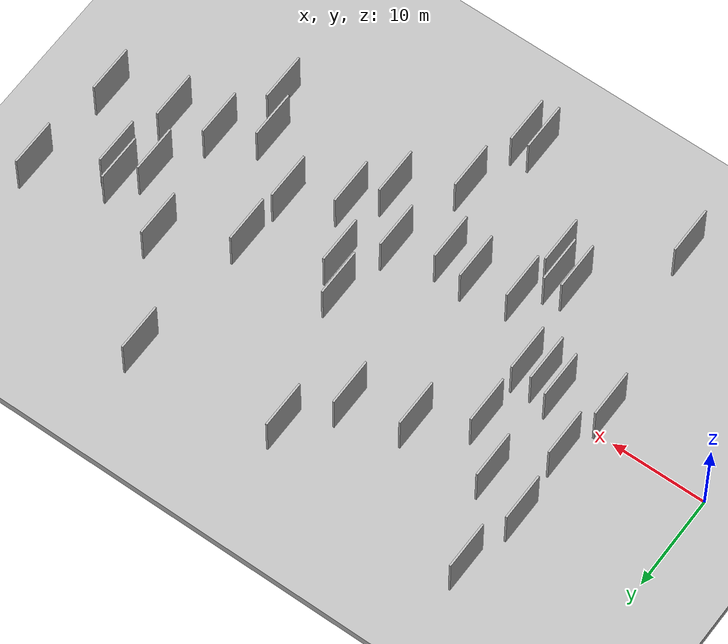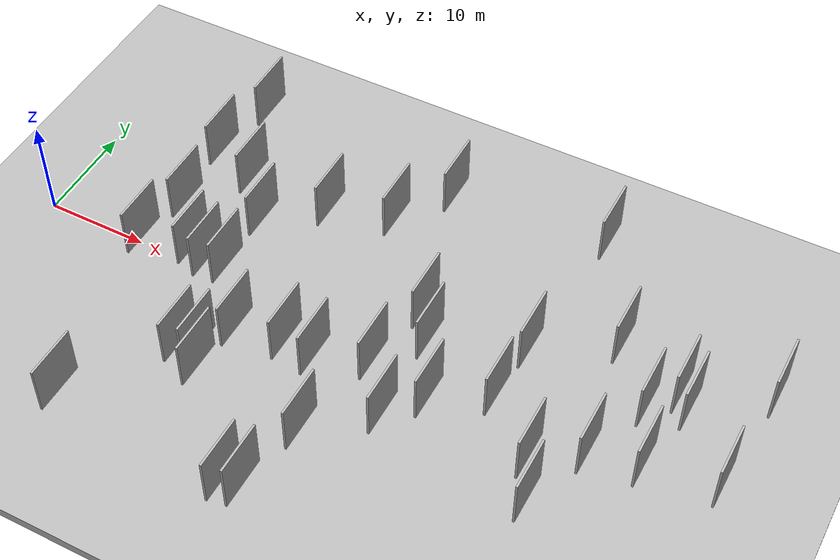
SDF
<?xml version="1.0" encoding="utf-8"?>

<sdf version="1.6">

   <world name="default">

      <gui fullscreen="0">

         <camera name="user_camera">

            <pose>-15 0 4.57585 0 0 0</pose>

            <view_controller>orbit</view_controller>

         </camera>

      </gui>

      <scene>

         <sky>

           <clouds>

             <speed>12</speed>

           </clouds>

         </sky>

         <ambient>0.4 0.4 0.4 1</ambient>

         <background>0.7 0.7 0.7 1</background>

         <shadows>1</shadows>

      </scene>

      <gravity>0 0 -9.8066</gravity>

      <magnetic_field>6e-06 2.3e-05 -4.2e-05</magnetic_field>

      <physics default="0" name="default_physics" type="ode">

         <ode>

            <solver>

               <type>quick</type>

               <iters>10</iters>

               <sor>1.0</sor>

               <use_dynamic_moi_rescaling>0</use_dynamic_moi_rescaling>

            </solver>

            <constraints>

               <cfm>0</cfm>

               <erp>0.2</erp>

               <contact_max_correcting_vel>100</contact_max_correcting_vel>

               <contact_surface_layer>0.001</contact_surface_layer>

            </constraints>

         </ode>

         <max_step_size>0.004</max_step_size>

         <real_time_factor>1</real_time_factor>

         <real_time_update_rate>250</real_time_update_rate>

      </physics>

      <light name="sun" type="directional">

         <cast_shadows>1</cast_shadows>

         <pose>0 0 10 0 0 0</pose>

         <diffuse>0.8 0.8 0.8 1</diffuse>

         <specular>0.2 0.2 0.2 1</specular>

         <attenuation>

            <range>1000</range>

            <constant>0.9</constant>

            <linear>0.01</linear>

            <quadratic>0.001</quadratic>

         </attenuation>

         <direction>-0.5 0.1 -0.9</direction>

      </light>

      <include>

         <name>ground_plane_1</name>

         <uri>model://HANNAS_ground_plane</uri>

         <pose>0 0 0  0 0 0</pose>

      </include>

      <include>

         <name>ground_plane_2</name>

         <uri>model://HANNAS_ground_plane</uri>

         <pose>100 0 0  0 0 0</pose>

      </include>

      <model name="HANNAS_wall_1">

         <static>1</static>

         <pose frame="">28.9679 -5.1095 2.5 0.000000 0.000000 1.570796</pose>

         <link name="link">

            <pose frame="">0 0 2.50 0 0 0</pose>

            <collision name="collision">

               <geometry>

                  <box>

                     <size>5.00 0.2 5.00</size>

                  </box>

               </geometry>

               <max_contacts>10</max_contacts>

               <surface>

                  <contact>

                     <ode/>

                  </contact>

                  <bounce/>

                  <friction>

                     <torsional>

                        <ode/>

                     </torsional>

                     <ode/>

                  </friction>

               </surface>

            </collision>

            <visual name="visual">

               <cast_shadows>0</cast_shadows>

               <geometry>

                  <box>

                     <size>5.00 0.2 5.00</size>

                  </box>

               </geometry>

               <material>

                  <script>

                     <uri>model://HANNAS_wall/materials/scripts</uri>

                     <uri>model://HANNAS_wall/materials/textures</uri>

                     <name>vrc/HANNAS_wall</name>

                  </script>

               </material>

            </visual>

            <self_collide>0</self_collide>

            <enable_wind>0</enable_wind>

            <kinematic>0</kinematic>

         </link>

      </model>

      <model name="HANNAS_wall_2">

         <static>1</static>

         <pose frame="">61.3008 5.7797 2.5 0.000000 0.000000 1.570796</pose>

         <link name="link">

            <pose frame="">0 0 2.50 0 0 0</pose>

            <collision name="collision">

               <geometry>

                  <box>

                     <size>5.00 0.2 5.00</size>

                  </box>

               </geometry>

               <max_contacts>10</max_contacts>

               <surface>

                  <contact>

                     <ode/>

                  </contact>

                  <bounce/>

                  <friction>

                     <torsional>

                        <ode/>

                     </torsional>

                     <ode/>

                  </friction>

               </surface>

            </collision>

            <visual name="visual">

               <cast_shadows>0</cast_shadows>

               <geometry>

                  <box>

                     <size>5.00 0.2 5.00</size>

                  </box>

               </geometry>

               <material>

                  <script>

                     <uri>model://HANNAS_wall/materials/scripts</uri>

                     <uri>model://HANNAS_wall/materials/textures</uri>

                     <name>vrc/HANNAS_wall</name>

                  </script>

               </material>

            </visual>

            <self_collide>0</self_collide>

            <enable_wind>0</enable_wind>

            <kinematic>0</kinematic>

         </link>

      </model>

      <model name="HANNAS_wall_3">

         <static>1</static>

         <pose frame="">33.4488 -19.4448 2.5 0.000000 0.000000 1.570796</pose>

         <link name="link">

            <pose frame="">0 0 2.50 0 0 0</pose>

            <collision name="collision">

               <geometry>

                  <box>

                     <size>5.00 0.2 5.00</size>

                  </box>

               </geometry>

               <max_contacts>10</max_contacts>

               <surface>

                  <contact>

                     <ode/>

                  </contact>

                  <bounce/>

                  <friction>

                     <torsional>

                        <ode/>

                     </torsional>

                     <ode/>

                  </friction>

               </surface>

            </collision>

            <visual name="visual">

               <cast_shadows>0</cast_shadows>

               <geometry>

                  <box>

                     <size>5.00 0.2 5.00</size>

                  </box>

               </geometry>

               <material>

                  <script>

                     <uri>model://HANNAS_wall/materials/scripts</uri>

                     <uri>model://HANNAS_wall/materials/textures</uri>

                     <name>vrc/HANNAS_wall</name>

                  </script>

               </material>

            </visual>

            <self_collide>0</self_collide>

            <enable_wind>0</enable_wind>

            <kinematic>0</kinematic>

         </link>

      </model>

      <model name="HANNAS_wall_4">

         <static>1</static>

         <pose frame="">19.7227 6.2007 2.5 0.000000 0.000000 1.570796</pose>

         <link name="link">

            <pose frame="">0 0 2.50 0 0 0</pose>

            <collision name="collision">

               <geometry>

                  <box>

                     <size>5.00 0.2 5.00</size>

                  </box>

               </geometry>

               <max_contacts>10</max_contacts>

               <surface>

                  <contact>

                     <ode/>

                  </contact>

                  <bounce/>

                  <friction>

                     <torsional>

                        <ode/>

                     </torsional>

                     <ode/>

                  </friction>

               </surface>

            </collision>

            <visual name="visual">

               <cast_shadows>0</cast_shadows>

               <geometry>

                  <box>

                     <size>5.00 0.2 5.00</size>

                  </box>

               </geometry>

               <material>

                  <script>

                     <uri>model://HANNAS_wall/materials/scripts</uri>

                     <uri>model://HANNAS_wall/materials/textures</uri>

                     <name>vrc/HANNAS_wall</name>

                  </script>

               </material>

            </visual>

            <self_collide>0</self_collide>

            <enable_wind>0</enable_wind>

            <kinematic>0</kinematic>

         </link>

      </model>

      <model name="HANNAS_wall_5">

         <static>1</static>

         <pose frame="">36.6707 -3.4539 2.5 0.000000 0.000000 1.570796</pose>

         <link name="link">

            <pose frame="">0 0 2.50 0 0 0</pose>

            <collision name="collision">

               <geometry>

                  <box>

                     <size>5.00 0.2 5.00</size>

                  </box>

               </geometry>

               <max_contacts>10</max_contacts>

               <surface>

                  <contact>

                     <ode/>

                  </contact>

                  <bounce/>

                  <friction>

                     <torsional>

                        <ode/>

                     </torsional>

                     <ode/>

                  </friction>

               </surface>

            </collision>

            <visual name="visual">

               <cast_shadows>0</cast_shadows>

               <geometry>

                  <box>

                     <size>5.00 0.2 5.00</size>

                  </box>

               </geometry>

               <material>

                  <script>

                     <uri>model://HANNAS_wall/materials/scripts</uri>

                     <uri>model://HANNAS_wall/materials/textures</uri>

                     <name>vrc/HANNAS_wall</name>

                  </script>

               </material>

            </visual>

            <self_collide>0</self_collide>

            <enable_wind>0</enable_wind>

            <kinematic>0</kinematic>

         </link>

      </model>

      <model name="HANNAS_wall_6">

         <static>1</static>

         <pose frame="">54.2506 -9.9566 2.5 0.000000 0.000000 1.570796</pose>

         <link name="link">

            <pose frame="">0 0 2.50 0 0 0</pose>

            <collision name="collision">

               <geometry>

                  <box>

                     <size>5.00 0.2 5.00</size>

                  </box>

               </geometry>

               <max_contacts>10</max_contacts>

               <surface>

                  <contact>

                     <ode/>

                  </contact>

                  <bounce/>

                  <friction>

                     <torsional>

                        <ode/>

                     </torsional>

                     <ode/>

                  </friction>

               </surface>

            </collision>

            <visual name="visual">

               <cast_shadows>0</cast_shadows>

               <geometry>

                  <box>

                     <size>5.00 0.2 5.00</size>

                  </box>

               </geometry>

               <material>

                  <script>

                     <uri>model://HANNAS_wall/materials/scripts</uri>

                     <uri>model://HANNAS_wall/materials/textures</uri>

                     <name>vrc/HANNAS_wall</name>

                  </script>

               </material>

            </visual>

            <self_collide>0</self_collide>

            <enable_wind>0</enable_wind>

            <kinematic>0</kinematic>

         </link>

      </model>

      <model name="HANNAS_wall_7">

         <static>1</static>

         <pose frame="">19.8229 -0.2111 2.5 0.000000 0.000000 1.570796</pose>

         <link name="link">

            <pose frame="">0 0 2.50 0 0 0</pose>

            <collision name="collision">

               <geometry>

                  <box>

                     <size>5.00 0.2 5.00</size>

                  </box>

               </geometry>

               <max_contacts>10</max_contacts>

               <surface>

                  <contact>

                     <ode/>

                  </contact>

                  <bounce/>

                  <friction>

                     <torsional>

                        <ode/>

                     </torsional>

                     <ode/>

                  </friction>

               </surface>

            </collision>

            <visual name="visual">

               <cast_shadows>0</cast_shadows>

               <geometry>

                  <box>

                     <size>5.00 0.2 5.00</size>

                  </box>

               </geometry>

               <material>

                  <script>

                     <uri>model://HANNAS_wall/materials/scripts</uri>

                     <uri>model://HANNAS_wall/materials/textures</uri>

                     <name>vrc/HANNAS_wall</name>

                  </script>

               </material>

            </visual>

            <self_collide>0</self_collide>

            <enable_wind>0</enable_wind>

            <kinematic>0</kinematic>

         </link>

      </model>

      <model name="HANNAS_wall_8">

         <static>1</static>

         <pose frame="">68.6237 9.1370 2.5 0.000000 0.000000 1.570796</pose>

         <link name="link">

            <pose frame="">0 0 2.50 0 0 0</pose>

            <collision name="collision">

               <geometry>

                  <box>

                     <size>5.00 0.2 5.00</size>

                  </box>

               </geometry>

               <max_contacts>10</max_contacts>

               <surface>

                  <contact>

                     <ode/>

                  </contact>

                  <bounce/>

                  <friction>

                     <torsional>

                        <ode/>

                     </torsional>

                     <ode/>

                  </friction>

               </surface>

            </collision>

            <visual name="visual">

               <cast_shadows>0</cast_shadows>

               <geometry>

                  <box>

                     <size>5.00 0.2 5.00</size>

                  </box>

               </geometry>

               <material>

                  <script>

                     <uri>model://HANNAS_wall/materials/scripts</uri>

                     <uri>model://HANNAS_wall/materials/textures</uri>

                     <name>vrc/HANNAS_wall</name>

                  </script>

               </material>

            </visual>

            <self_collide>0</self_collide>

            <enable_wind>0</enable_wind>

            <kinematic>0</kinematic>

         </link>

      </model>

      <model name="HANNAS_wall_9">

         <static>1</static>

         <pose frame="">12.2445 4.7971 2.5 0.000000 0.000000 1.570796</pose>

         <link name="link">

            <pose frame="">0 0 2.50 0 0 0</pose>

            <collision name="collision">

               <geometry>

                  <box>

                     <size>5.00 0.2 5.00</size>

                  </box>

               </geometry>

               <max_contacts>10</max_contacts>

               <surface>

                  <contact>

                     <ode/>

                  </contact>

                  <bounce/>

                  <friction>

                     <torsional>

                        <ode/>

                     </torsional>

                     <ode/>

                  </friction>

               </surface>

            </collision>

            <visual name="visual">

               <cast_shadows>0</cast_shadows>

               <geometry>

                  <box>

                     <size>5.00 0.2 5.00</size>

                  </box>

               </geometry>

               <material>

                  <script>

                     <uri>model://HANNAS_wall/materials/scripts</uri>

                     <uri>model://HANNAS_wall/materials/textures</uri>

                     <name>vrc/HANNAS_wall</name>

                  </script>

               </material>

            </visual>

            <self_collide>0</self_collide>

            <enable_wind>0</enable_wind>

            <kinematic>0</kinematic>

         </link>

      </model>

      <model name="HANNAS_wall_10">

         <static>1</static>

         <pose frame="">52.6502 -6.1706 2.5 0.000000 0.000000 1.570796</pose>

         <link name="link">

            <pose frame="">0 0 2.50 0 0 0</pose>

            <collision name="collision">

               <geometry>

                  <box>

                     <size>5.00 0.2 5.00</size>

                  </box>

               </geometry>

               <max_contacts>10</max_contacts>

               <surface>

                  <contact>

                     <ode/>

                  </contact>

                  <bounce/>

                  <friction>

                     <torsional>

                        <ode/>

                     </torsional>

                     <ode/>

                  </friction>

               </surface>

            </collision>

            <visual name="visual">

               <cast_shadows>0</cast_shadows>

               <geometry>

                  <box>

                     <size>5.00 0.2 5.00</size>

                  </box>

               </geometry>

               <material>

                  <script>

                     <uri>model://HANNAS_wall/materials/scripts</uri>

                     <uri>model://HANNAS_wall/materials/textures</uri>

                     <name>vrc/HANNAS_wall</name>

                  </script>

               </material>

            </visual>

            <self_collide>0</self_collide>

            <enable_wind>0</enable_wind>

            <kinematic>0</kinematic>

         </link>

      </model>

      <model name="HANNAS_wall_11">

         <static>1</static>

         <pose frame="">23.7199 -11.0015 2.5 0.000000 0.000000 1.570796</pose>

         <link name="link">

            <pose frame="">0 0 2.50 0 0 0</pose>

            <collision name="collision">

               <geometry>

                  <box>

                     <size>5.00 0.2 5.00</size>

                  </box>

               </geometry>

               <max_contacts>10</max_contacts>

               <surface>

                  <contact>

                     <ode/>

                  </contact>

                  <bounce/>

                  <friction>

                     <torsional>

                        <ode/>

                     </torsional>

                     <ode/>

                  </friction>

               </surface>

            </collision>

            <visual name="visual">

               <cast_shadows>0</cast_shadows>

               <geometry>

                  <box>

                     <size>5.00 0.2 5.00</size>

                  </box>

               </geometry>

               <material>

                  <script>

                     <uri>model://HANNAS_wall/materials/scripts</uri>

                     <uri>model://HANNAS_wall/materials/textures</uri>

                     <name>vrc/HANNAS_wall</name>

                  </script>

               </material>

            </visual>

            <self_collide>0</self_collide>

            <enable_wind>0</enable_wind>

            <kinematic>0</kinematic>

         </link>

      </model>

      <model name="HANNAS_wall_12">

         <static>1</static>

         <pose frame="">14.7693 -18.6990 2.5 0.000000 0.000000 1.570796</pose>

         <link name="link">

            <pose frame="">0 0 2.50 0 0 0</pose>

            <collision name="collision">

               <geometry>

                  <box>

                     <size>5.00 0.2 5.00</size>

                  </box>

               </geometry>

               <max_contacts>10</max_contacts>

               <surface>

                  <contact>

                     <ode/>

                  </contact>

                  <bounce/>

                  <friction>

                     <torsional>

                        <ode/>

                     </torsional>

                     <ode/>

                  </friction>

               </surface>

            </collision>

            <visual name="visual">

               <cast_shadows>0</cast_shadows>

               <geometry>

                  <box>

                     <size>5.00 0.2 5.00</size>

                  </box>

               </geometry>

               <material>

                  <script>

                     <uri>model://HANNAS_wall/materials/scripts</uri>

                     <uri>model://HANNAS_wall/materials/textures</uri>

                     <name>vrc/HANNAS_wall</name>

                  </script>

               </material>

            </visual>

            <self_collide>0</self_collide>

            <enable_wind>0</enable_wind>

            <kinematic>0</kinematic>

         </link>

      </model>

      <model name="HANNAS_wall_13">

         <static>1</static>

         <pose frame="">11.5987 12.2267 2.5 0.000000 0.000000 1.570796</pose>

         <link name="link">

            <pose frame="">0 0 2.50 0 0 0</pose>

            <collision name="collision">

               <geometry>

                  <box>

                     <size>5.00 0.2 5.00</size>

                  </box>

               </geometry>

               <max_contacts>10</max_contacts>

               <surface>

                  <contact>

                     <ode/>

                  </contact>

                  <bounce/>

                  <friction>

                     <torsional>

                        <ode/>

                     </torsional>

                     <ode/>

                  </friction>

               </surface>

            </collision>

            <visual name="visual">

               <cast_shadows>0</cast_shadows>

               <geometry>

                  <box>

                     <size>5.00 0.2 5.00</size>

                  </box>

               </geometry>

               <material>

                  <script>

                     <uri>model://HANNAS_wall/materials/scripts</uri>

                     <uri>model://HANNAS_wall/materials/textures</uri>

                     <name>vrc/HANNAS_wall</name>

                  </script>

               </material>

            </visual>

            <self_collide>0</self_collide>

            <enable_wind>0</enable_wind>

            <kinematic>0</kinematic>

         </link>

      </model>

      <model name="HANNAS_wall_14">

         <static>1</static>

         <pose frame="">12.8484 18.9729 2.5 0.000000 0.000000 1.570796</pose>

         <link name="link">

            <pose frame="">0 0 2.50 0 0 0</pose>

            <collision name="collision">

               <geometry>

                  <box>

                     <size>5.00 0.2 5.00</size>

                  </box>

               </geometry>

               <max_contacts>10</max_contacts>

               <surface>

                  <contact>

                     <ode/>

                  </contact>

                  <bounce/>

                  <friction>

                     <torsional>

                        <ode/>

                     </torsional>

                     <ode/>

                  </friction>

               </surface>

            </collision>

            <visual name="visual">

               <cast_shadows>0</cast_shadows>

               <geometry>

                  <box>

                     <size>5.00 0.2 5.00</size>

                  </box>

               </geometry>

               <material>

                  <script>

                     <uri>model://HANNAS_wall/materials/scripts</uri>

                     <uri>model://HANNAS_wall/materials/textures</uri>

                     <name>vrc/HANNAS_wall</name>

                  </script>

               </material>

            </visual>

            <self_collide>0</self_collide>

            <enable_wind>0</enable_wind>

            <kinematic>0</kinematic>

         </link>

      </model>

      <model name="HANNAS_wall_15">

         <static>1</static>

         <pose frame="">15.8689 0.2521 2.5 0.000000 0.000000 1.570796</pose>

         <link name="link">

            <pose frame="">0 0 2.50 0 0 0</pose>

            <collision name="collision">

               <geometry>

                  <box>

                     <size>5.00 0.2 5.00</size>

                  </box>

               </geometry>

               <max_contacts>10</max_contacts>

               <surface>

                  <contact>

                     <ode/>

                  </contact>

                  <bounce/>

                  <friction>

                     <torsional>

                        <ode/>

                     </torsional>

                     <ode/>

                  </friction>

               </surface>

            </collision>

            <visual name="visual">

               <cast_shadows>0</cast_shadows>

               <geometry>

                  <box>

                     <size>5.00 0.2 5.00</size>

                  </box>

               </geometry>

               <material>

                  <script>

                     <uri>model://HANNAS_wall/materials/scripts</uri>

                     <uri>model://HANNAS_wall/materials/textures</uri>

                     <name>vrc/HANNAS_wall</name>

                  </script>

               </material>

            </visual>

            <self_collide>0</self_collide>

            <enable_wind>0</enable_wind>

            <kinematic>0</kinematic>

         </link>

      </model>

      <model name="HANNAS_wall_16">

         <static>1</static>

         <pose frame="">17.8368 -0.3774 2.5 0.000000 0.000000 1.570796</pose>

         <link name="link">

            <pose frame="">0 0 2.50 0 0 0</pose>

            <collision name="collision">

               <geometry>

                  <box>

                     <size>5.00 0.2 5.00</size>

                  </box>

               </geometry>

               <max_contacts>10</max_contacts>

               <surface>

                  <contact>

                     <ode/>

                  </contact>

                  <bounce/>

                  <friction>

                     <torsional>

                        <ode/>

                     </torsional>

                     <ode/>

                  </friction>

               </surface>

            </collision>

            <visual name="visual">

               <cast_shadows>0</cast_shadows>

               <geometry>

                  <box>

                     <size>5.00 0.2 5.00</size>

                  </box>

               </geometry>

               <material>

                  <script>

                     <uri>model://HANNAS_wall/materials/scripts</uri>

                     <uri>model://HANNAS_wall/materials/textures</uri>

                     <name>vrc/HANNAS_wall</name>

                  </script>

               </material>

            </visual>

            <self_collide>0</self_collide>

            <enable_wind>0</enable_wind>

            <kinematic>0</kinematic>

         </link>

      </model>

      <model name="HANNAS_wall_17">

         <static>1</static>

         <pose frame="">31.7555 -19.7597 2.5 0.000000 0.000000 1.570796</pose>

         <link name="link">

            <pose frame="">0 0 2.50 0 0 0</pose>

            <collision name="collision">

               <geometry>

                  <box>

                     <size>5.00 0.2 5.00</size>

                  </box>

               </geometry>

               <max_contacts>10</max_contacts>

               <surface>

                  <contact>

                     <ode/>

                  </contact>

                  <bounce/>

                  <friction>

                     <torsional>

                        <ode/>

                     </torsional>

                     <ode/>

                  </friction>

               </surface>

            </collision>

            <visual name="visual">

               <cast_shadows>0</cast_shadows>

               <geometry>

                  <box>

                     <size>5.00 0.2 5.00</size>

                  </box>

               </geometry>

               <material>

                  <script>

                     <uri>model://HANNAS_wall/materials/scripts</uri>

                     <uri>model://HANNAS_wall/materials/textures</uri>

                     <name>vrc/HANNAS_wall</name>

                  </script>

               </material>

            </visual>

            <self_collide>0</self_collide>

            <enable_wind>0</enable_wind>

            <kinematic>0</kinematic>

         </link>

      </model>

      <model name="HANNAS_wall_18">

         <static>1</static>

         <pose frame="">16.1275 10.3490 2.5 0.000000 0.000000 1.570796</pose>

         <link name="link">

            <pose frame="">0 0 2.50 0 0 0</pose>

            <collision name="collision">

               <geometry>

                  <box>

                     <size>5.00 0.2 5.00</size>

                  </box>

               </geometry>

               <max_contacts>10</max_contacts>

               <surface>

                  <contact>

                     <ode/>

                  </contact>

                  <bounce/>

                  <friction>

                     <torsional>

                        <ode/>

                     </torsional>

                     <ode/>

                  </friction>

               </surface>

            </collision>

            <visual name="visual">

               <cast_shadows>0</cast_shadows>

               <geometry>

                  <box>

                     <size>5.00 0.2 5.00</size>

                  </box>

               </geometry>

               <material>

                  <script>

                     <uri>model://HANNAS_wall/materials/scripts</uri>

                     <uri>model://HANNAS_wall/materials/textures</uri>

                     <name>vrc/HANNAS_wall</name>

                  </script>

               </material>

            </visual>

            <self_collide>0</self_collide>

            <enable_wind>0</enable_wind>

            <kinematic>0</kinematic>

         </link>

      </model>

      <model name="HANNAS_wall_19">

         <static>1</static>

         <pose frame="">24.3871 -5.9089 2.5 0.000000 0.000000 1.570796</pose>

         <link name="link">

            <pose frame="">0 0 2.50 0 0 0</pose>

            <collision name="collision">

               <geometry>

                  <box>

                     <size>5.00 0.2 5.00</size>

                  </box>

               </geometry>

               <max_contacts>10</max_contacts>

               <surface>

                  <contact>

                     <ode/>

                  </contact>

                  <bounce/>

                  <friction>

                     <torsional>

                        <ode/>

                     </torsional>

                     <ode/>

                  </friction>

               </surface>

            </collision>

            <visual name="visual">

               <cast_shadows>0</cast_shadows>

               <geometry>

                  <box>

                     <size>5.00 0.2 5.00</size>

                  </box>

               </geometry>

               <material>

                  <script>

                     <uri>model://HANNAS_wall/materials/scripts</uri>

                     <uri>model://HANNAS_wall/materials/textures</uri>

                     <name>vrc/HANNAS_wall</name>

                  </script>

               </material>

            </visual>

            <self_collide>0</self_collide>

            <enable_wind>0</enable_wind>

            <kinematic>0</kinematic>

         </link>

      </model>

      <model name="HANNAS_wall_20">

         <static>1</static>

         <pose frame="">48.0248 4.0119 2.5 0.000000 0.000000 1.570796</pose>

         <link name="link">

            <pose frame="">0 0 2.50 0 0 0</pose>

            <collision name="collision">

               <geometry>

                  <box>

                     <size>5.00 0.2 5.00</size>

                  </box>

               </geometry>

               <max_contacts>10</max_contacts>

               <surface>

                  <contact>

                     <ode/>

                  </contact>

                  <bounce/>

                  <friction>

                     <torsional>

                        <ode/>

                     </torsional>

                     <ode/>

                  </friction>

               </surface>

            </collision>

            <visual name="visual">

               <cast_shadows>0</cast_shadows>

               <geometry>

                  <box>

                     <size>5.00 0.2 5.00</size>

                  </box>

               </geometry>

               <material>

                  <script>

                     <uri>model://HANNAS_wall/materials/scripts</uri>

                     <uri>model://HANNAS_wall/materials/textures</uri>

                     <name>vrc/HANNAS_wall</name>

                  </script>

               </material>

            </visual>

            <self_collide>0</self_collide>

            <enable_wind>0</enable_wind>

            <kinematic>0</kinematic>

         </link>

      </model>

      <model name="HANNAS_wall_21">

         <static>1</static>

         <pose frame="">30.6309 11.9937 2.5 0.000000 0.000000 1.570796</pose>

         <link name="link">

            <pose frame="">0 0 2.50 0 0 0</pose>

            <collision name="collision">

               <geometry>

                  <box>

                     <size>5.00 0.2 5.00</size>

                  </box>

               </geometry>

               <max_contacts>10</max_contacts>

               <surface>

                  <contact>

                     <ode/>

                  </contact>

                  <bounce/>

                  <friction>

                     <torsional>

                        <ode/>

                     </torsional>

                     <ode/>

                  </friction>

               </surface>

            </collision>

            <visual name="visual">

               <cast_shadows>0</cast_shadows>

               <geometry>

                  <box>

                     <size>5.00 0.2 5.00</size>

                  </box>

               </geometry>

               <material>

                  <script>

                     <uri>model://HANNAS_wall/materials/scripts</uri>

                     <uri>model://HANNAS_wall/materials/textures</uri>

                     <name>vrc/HANNAS_wall</name>

                  </script>

               </material>

            </visual>

            <self_collide>0</self_collide>

            <enable_wind>0</enable_wind>

            <kinematic>0</kinematic>

         </link>

      </model>

      <model name="HANNAS_wall_22">

         <static>1</static>

         <pose frame="">49.1859 18.6435 2.5 0.000000 0.000000 1.570796</pose>

         <link name="link">

            <pose frame="">0 0 2.50 0 0 0</pose>

            <collision name="collision">

               <geometry>

                  <box>

                     <size>5.00 0.2 5.00</size>

                  </box>

               </geometry>

               <max_contacts>10</max_contacts>

               <surface>

                  <contact>

                     <ode/>

                  </contact>

                  <bounce/>

                  <friction>

                     <torsional>

                        <ode/>

                     </torsional>

                     <ode/>

                  </friction>

               </surface>

            </collision>

            <visual name="visual">

               <cast_shadows>0</cast_shadows>

               <geometry>

                  <box>

                     <size>5.00 0.2 5.00</size>

                  </box>

               </geometry>

               <material>

                  <script>

                     <uri>model://HANNAS_wall/materials/scripts</uri>

                     <uri>model://HANNAS_wall/materials/textures</uri>

                     <name>vrc/HANNAS_wall</name>

                  </script>

               </material>

            </visual>

            <self_collide>0</self_collide>

            <enable_wind>0</enable_wind>

            <kinematic>0</kinematic>

         </link>

      </model>

      <model name="HANNAS_wall_23">

         <static>1</static>

         <pose frame="">62.5494 4.4747 2.5 0.000000 0.000000 1.570796</pose>

         <link name="link">

            <pose frame="">0 0 2.50 0 0 0</pose>

            <collision name="collision">

               <geometry>

                  <box>

                     <size>5.00 0.2 5.00</size>

                  </box>

               </geometry>

               <max_contacts>10</max_contacts>

               <surface>

                  <contact>

                     <ode/>

                  </contact>

                  <bounce/>

                  <friction>

                     <torsional>

                        <ode/>

                     </torsional>

                     <ode/>

                  </friction>

               </surface>

            </collision>

            <visual name="visual">

               <cast_shadows>0</cast_shadows>

               <geometry>

                  <box>

                     <size>5.00 0.2 5.00</size>

                  </box>

               </geometry>

               <material>

                  <script>

                     <uri>model://HANNAS_wall/materials/scripts</uri>

                     <uri>model://HANNAS_wall/materials/textures</uri>

                     <name>vrc/HANNAS_wall</name>

                  </script>

               </material>

            </visual>

            <self_collide>0</self_collide>

            <enable_wind>0</enable_wind>

            <kinematic>0</kinematic>

         </link>

      </model>

      <model name="HANNAS_wall_24">

         <static>1</static>

         <pose frame="">67.6492 -1.2611 2.5 0.000000 0.000000 1.570796</pose>

         <link name="link">

            <pose frame="">0 0 2.50 0 0 0</pose>

            <collision name="collision">

               <geometry>

                  <box>

                     <size>5.00 0.2 5.00</size>

                  </box>

               </geometry>

               <max_contacts>10</max_contacts>

               <surface>

                  <contact>

                     <ode/>

                  </contact>

                  <bounce/>

                  <friction>

                     <torsional>

                        <ode/>

                     </torsional>

                     <ode/>

                  </friction>

               </surface>

            </collision>

            <visual name="visual">

               <cast_shadows>0</cast_shadows>

               <geometry>

                  <box>

                     <size>5.00 0.2 5.00</size>

                  </box>

               </geometry>

               <material>

                  <script>

                     <uri>model://HANNAS_wall/materials/scripts</uri>

                     <uri>model://HANNAS_wall/materials/textures</uri>

                     <name>vrc/HANNAS_wall</name>

                  </script>

               </material>

            </visual>

            <self_collide>0</self_collide>

            <enable_wind>0</enable_wind>

            <kinematic>0</kinematic>

         </link>

      </model>

      <model name="HANNAS_wall_25">

         <static>1</static>

         <pose frame="">42.6848 -4.7150 2.5 0.000000 0.000000 1.570796</pose>

         <link name="link">

            <pose frame="">0 0 2.50 0 0 0</pose>

            <collision name="collision">

               <geometry>

                  <box>

                     <size>5.00 0.2 5.00</size>

                  </box>

               </geometry>

               <max_contacts>10</max_contacts>

               <surface>

                  <contact>

                     <ode/>

                  </contact>

                  <bounce/>

                  <friction>

                     <torsional>

                        <ode/>

                     </torsional>

                     <ode/>

                  </friction>

               </surface>

            </collision>

            <visual name="visual">

               <cast_shadows>0</cast_shadows>

               <geometry>

                  <box>

                     <size>5.00 0.2 5.00</size>

                  </box>

               </geometry>

               <material>

                  <script>

                     <uri>model://HANNAS_wall/materials/scripts</uri>

                     <uri>model://HANNAS_wall/materials/textures</uri>

                     <name>vrc/HANNAS_wall</name>

                  </script>

               </material>

            </visual>

            <self_collide>0</self_collide>

            <enable_wind>0</enable_wind>

            <kinematic>0</kinematic>

         </link>

      </model>

      <model name="HANNAS_wall_26">

         <static>1</static>

         <pose frame="">56.7510 -3.4696 2.5 0.000000 0.000000 1.570796</pose>

         <link name="link">

            <pose frame="">0 0 2.50 0 0 0</pose>

            <collision name="collision">

               <geometry>

                  <box>

                     <size>5.00 0.2 5.00</size>

                  </box>

               </geometry>

               <max_contacts>10</max_contacts>

               <surface>

                  <contact>

                     <ode/>

                  </contact>

                  <bounce/>

                  <friction>

                     <torsional>

                        <ode/>

                     </torsional>

                     <ode/>

                  </friction>

               </surface>

            </collision>

            <visual name="visual">

               <cast_shadows>0</cast_shadows>

               <geometry>

                  <box>

                     <size>5.00 0.2 5.00</size>

                  </box>

               </geometry>

               <material>

                  <script>

                     <uri>model://HANNAS_wall/materials/scripts</uri>

                     <uri>model://HANNAS_wall/materials/textures</uri>

                     <name>vrc/HANNAS_wall</name>

                  </script>

               </material>

            </visual>

            <self_collide>0</self_collide>

            <enable_wind>0</enable_wind>

            <kinematic>0</kinematic>

         </link>

      </model>

      <model name="HANNAS_wall_27">

         <static>1</static>

         <pose frame="">20.9794 -9.6685 2.5 0.000000 0.000000 1.570796</pose>

         <link name="link">

            <pose frame="">0 0 2.50 0 0 0</pose>

            <collision name="collision">

               <geometry>

                  <box>

                     <size>5.00 0.2 5.00</size>

                  </box>

               </geometry>

               <max_contacts>10</max_contacts>

               <surface>

                  <contact>

                     <ode/>

                  </contact>

                  <bounce/>

                  <friction>

                     <torsional>

                        <ode/>

                     </torsional>

                     <ode/>

                  </friction>

               </surface>

            </collision>

            <visual name="visual">

               <cast_shadows>0</cast_shadows>

               <geometry>

                  <box>

                     <size>5.00 0.2 5.00</size>

                  </box>

               </geometry>

               <material>

                  <script>

                     <uri>model://HANNAS_wall/materials/scripts</uri>

                     <uri>model://HANNAS_wall/materials/textures</uri>

                     <name>vrc/HANNAS_wall</name>

                  </script>

               </material>

            </visual>

            <self_collide>0</self_collide>

            <enable_wind>0</enable_wind>

            <kinematic>0</kinematic>

         </link>

      </model>

      <model name="HANNAS_wall_28">

         <static>1</static>

         <pose frame="">54.9138 8.2846 2.5 0.000000 0.000000 1.570796</pose>

         <link name="link">

            <pose frame="">0 0 2.50 0 0 0</pose>

            <collision name="collision">

               <geometry>

                  <box>

                     <size>5.00 0.2 5.00</size>

                  </box>

               </geometry>

               <max_contacts>10</max_contacts>

               <surface>

                  <contact>

                     <ode/>

                  </contact>

                  <bounce/>

                  <friction>

                     <torsional>

                        <ode/>

                     </torsional>

                     <ode/>

                  </friction>

               </surface>

            </collision>

            <visual name="visual">

               <cast_shadows>0</cast_shadows>

               <geometry>

                  <box>

                     <size>5.00 0.2 5.00</size>

                  </box>

               </geometry>

               <material>

                  <script>

                     <uri>model://HANNAS_wall/materials/scripts</uri>

                     <uri>model://HANNAS_wall/materials/textures</uri>

                     <name>vrc/HANNAS_wall</name>

                  </script>

               </material>

            </visual>

            <self_collide>0</self_collide>

            <enable_wind>0</enable_wind>

            <kinematic>0</kinematic>

         </link>

      </model>

      <model name="HANNAS_wall_29">

         <static>1</static>

         <pose frame="">31.9769 -5.3923 2.5 0.000000 0.000000 1.570796</pose>

         <link name="link">

            <pose frame="">0 0 2.50 0 0 0</pose>

            <collision name="collision">

               <geometry>

                  <box>

                     <size>5.00 0.2 5.00</size>

                  </box>

               </geometry>

               <max_contacts>10</max_contacts>

               <surface>

                  <contact>

                     <ode/>

                  </contact>

                  <bounce/>

                  <friction>

                     <torsional>

                        <ode/>

                     </torsional>

                     <ode/>

                  </friction>

               </surface>

            </collision>

            <visual name="visual">

               <cast_shadows>0</cast_shadows>

               <geometry>

                  <box>

                     <size>5.00 0.2 5.00</size>

                  </box>

               </geometry>

               <material>

                  <script>

                     <uri>model://HANNAS_wall/materials/scripts</uri>

                     <uri>model://HANNAS_wall/materials/textures</uri>

                     <name>vrc/HANNAS_wall</name>

                  </script>

               </material>

            </visual>

            <self_collide>0</self_collide>

            <enable_wind>0</enable_wind>

            <kinematic>0</kinematic>

         </link>

      </model>

      <model name="HANNAS_wall_30">

         <static>1</static>

         <pose frame="">22.6689 -9.3028 2.5 0.000000 0.000000 1.570796</pose>

         <link name="link">

            <pose frame="">0 0 2.50 0 0 0</pose>

            <collision name="collision">

               <geometry>

                  <box>

                     <size>5.00 0.2 5.00</size>

                  </box>

               </geometry>

               <max_contacts>10</max_contacts>

               <surface>

                  <contact>

                     <ode/>

                  </contact>

                  <bounce/>

                  <friction>

                     <torsional>

                        <ode/>

                     </torsional>

                     <ode/>

                  </friction>

               </surface>

            </collision>

            <visual name="visual">

               <cast_shadows>0</cast_shadows>

               <geometry>

                  <box>

                     <size>5.00 0.2 5.00</size>

                  </box>

               </geometry>

               <material>

                  <script>

                     <uri>model://HANNAS_wall/materials/scripts</uri>

                     <uri>model://HANNAS_wall/materials/textures</uri>

                     <name>vrc/HANNAS_wall</name>

                  </script>

               </material>

            </visual>

            <self_collide>0</self_collide>

            <enable_wind>0</enable_wind>

            <kinematic>0</kinematic>

         </link>

      </model>

      <model name="HANNAS_wall_31">

         <static>1</static>

         <pose frame="">34.8024 -12.4966 2.5 0.000000 0.000000 1.570796</pose>

         <link name="link">

            <pose frame="">0 0 2.50 0 0 0</pose>

            <collision name="collision">

               <geometry>

                  <box>

                     <size>5.00 0.2 5.00</size>

                  </box>

               </geometry>

               <max_contacts>10</max_contacts>

               <surface>

                  <contact>

                     <ode/>

                  </contact>

                  <bounce/>

                  <friction>

                     <torsional>

                        <ode/>

                     </torsional>

                     <ode/>

                  </friction>

               </surface>

            </collision>

            <visual name="visual">

               <cast_shadows>0</cast_shadows>

               <geometry>

                  <box>

                     <size>5.00 0.2 5.00</size>

                  </box>

               </geometry>

               <material>

                  <script>

                     <uri>model://HANNAS_wall/materials/scripts</uri>

                     <uri>model://HANNAS_wall/materials/textures</uri>

                     <name>vrc/HANNAS_wall</name>

                  </script>

               </material>

            </visual>

            <self_collide>0</self_collide>

            <enable_wind>0</enable_wind>

            <kinematic>0</kinematic>

         </link>

      </model>

      <model name="HANNAS_wall_32">

         <static>1</static>

         <pose frame="">34.1193 17.2836 2.5 0.000000 0.000000 1.570796</pose>

         <link name="link">

            <pose frame="">0 0 2.50 0 0 0</pose>

            <collision name="collision">

               <geometry>

                  <box>

                     <size>5.00 0.2 5.00</size>

                  </box>

               </geometry>

               <max_contacts>10</max_contacts>

               <surface>

                  <contact>

                     <ode/>

                  </contact>

                  <bounce/>

                  <friction>

                     <torsional>

                        <ode/>

                     </torsional>

                     <ode/>

                  </friction>

               </surface>

            </collision>

            <visual name="visual">

               <cast_shadows>0</cast_shadows>

               <geometry>

                  <box>

                     <size>5.00 0.2 5.00</size>

                  </box>

               </geometry>

               <material>

                  <script>

                     <uri>model://HANNAS_wall/materials/scripts</uri>

                     <uri>model://HANNAS_wall/materials/textures</uri>

                     <name>vrc/HANNAS_wall</name>

                  </script>

               </material>

            </visual>

            <self_collide>0</self_collide>

            <enable_wind>0</enable_wind>

            <kinematic>0</kinematic>

         </link>

      </model>

      <model name="HANNAS_wall_33">

         <static>1</static>

         <pose frame="">38.0274 3.5822 2.5 0.000000 0.000000 1.570796</pose>

         <link name="link">

            <pose frame="">0 0 2.50 0 0 0</pose>

            <collision name="collision">

               <geometry>

                  <box>

                     <size>5.00 0.2 5.00</size>

                  </box>

               </geometry>

               <max_contacts>10</max_contacts>

               <surface>

                  <contact>

                     <ode/>

                  </contact>

                  <bounce/>

                  <friction>

                     <torsional>

                        <ode/>

                     </torsional>

                     <ode/>

                  </friction>

               </surface>

            </collision>

            <visual name="visual">

               <cast_shadows>0</cast_shadows>

               <geometry>

                  <box>

                     <size>5.00 0.2 5.00</size>

                  </box>

               </geometry>

               <material>

                  <script>

                     <uri>model://HANNAS_wall/materials/scripts</uri>

                     <uri>model://HANNAS_wall/materials/textures</uri>

                     <name>vrc/HANNAS_wall</name>

                  </script>

               </material>

            </visual>

            <self_collide>0</self_collide>

            <enable_wind>0</enable_wind>

            <kinematic>0</kinematic>

         </link>

      </model>

      <model name="HANNAS_wall_34">

         <static>1</static>

         <pose frame="">61.2552 -2.4739 2.5 0.000000 0.000000 1.570796</pose>

         <link name="link">

            <pose frame="">0 0 2.50 0 0 0</pose>

            <collision name="collision">

               <geometry>

                  <box>

                     <size>5.00 0.2 5.00</size>

                  </box>

               </geometry>

               <max_contacts>10</max_contacts>

               <surface>

                  <contact>

                     <ode/>

                  </contact>

                  <bounce/>

                  <friction>

                     <torsional>

                        <ode/>

                     </torsional>

                     <ode/>

                  </friction>

               </surface>

            </collision>

            <visual name="visual">

               <cast_shadows>0</cast_shadows>

               <geometry>

                  <box>

                     <size>5.00 0.2 5.00</size>

                  </box>

               </geometry>

               <material>

                  <script>

                     <uri>model://HANNAS_wall/materials/scripts</uri>

                     <uri>model://HANNAS_wall/materials/textures</uri>

                     <name>vrc/HANNAS_wall</name>

                  </script>

               </material>

            </visual>

            <self_collide>0</self_collide>

            <enable_wind>0</enable_wind>

            <kinematic>0</kinematic>

         </link>

      </model>

      <model name="HANNAS_wall_35">

         <static>1</static>

         <pose frame="">24.6389 10.2072 2.5 0.000000 0.000000 1.570796</pose>

         <link name="link">

            <pose frame="">0 0 2.50 0 0 0</pose>

            <collision name="collision">

               <geometry>

                  <box>

                     <size>5.00 0.2 5.00</size>

                  </box>

               </geometry>

               <max_contacts>10</max_contacts>

               <surface>

                  <contact>

                     <ode/>

                  </contact>

                  <bounce/>

                  <friction>

                     <torsional>

                        <ode/>

                     </torsional>

                     <ode/>

                  </friction>

               </surface>

            </collision>

            <visual name="visual">

               <cast_shadows>0</cast_shadows>

               <geometry>

                  <box>

                     <size>5.00 0.2 5.00</size>

                  </box>

               </geometry>

               <material>

                  <script>

                     <uri>model://HANNAS_wall/materials/scripts</uri>

                     <uri>model://HANNAS_wall/materials/textures</uri>

                     <name>vrc/HANNAS_wall</name>

                  </script>

               </material>

            </visual>

            <self_collide>0</self_collide>

            <enable_wind>0</enable_wind>

            <kinematic>0</kinematic>

         </link>

      </model>

      <model name="HANNAS_wall_36">

         <static>1</static>

         <pose frame="">59.2598 3.1240 2.5 0.000000 0.000000 1.570796</pose>

         <link name="link">

            <pose frame="">0 0 2.50 0 0 0</pose>

            <collision name="collision">

               <geometry>

                  <box>

                     <size>5.00 0.2 5.00</size>

                  </box>

               </geometry>

               <max_contacts>10</max_contacts>

               <surface>

                  <contact>

                     <ode/>

                  </contact>

                  <bounce/>

                  <friction>

                     <torsional>

                        <ode/>

                     </torsional>

                     <ode/>

                  </friction>

               </surface>

            </collision>

            <visual name="visual">

               <cast_shadows>0</cast_shadows>

               <geometry>

                  <box>

                     <size>5.00 0.2 5.00</size>

                  </box>

               </geometry>

               <material>

                  <script>

                     <uri>model://HANNAS_wall/materials/scripts</uri>

                     <uri>model://HANNAS_wall/materials/textures</uri>

                     <name>vrc/HANNAS_wall</name>

                  </script>

               </material>

            </visual>

            <self_collide>0</self_collide>

            <enable_wind>0</enable_wind>

            <kinematic>0</kinematic>

         </link>

      </model>

      <model name="HANNAS_wall_37">

         <static>1</static>

         <pose frame="">47.6593 -1.7813 2.5 0.000000 0.000000 1.570796</pose>

         <link name="link">

            <pose frame="">0 0 2.50 0 0 0</pose>

            <collision name="collision">

               <geometry>

                  <box>

                     <size>5.00 0.2 5.00</size>

                  </box>

               </geometry>

               <max_contacts>10</max_contacts>

               <surface>

                  <contact>

                     <ode/>

                  </contact>

                  <bounce/>

                  <friction>

                     <torsional>

                        <ode/>

                     </torsional>

                     <ode/>

                  </friction>

               </surface>

            </collision>

            <visual name="visual">

               <cast_shadows>0</cast_shadows>

               <geometry>

                  <box>

                     <size>5.00 0.2 5.00</size>

                  </box>

               </geometry>

               <material>

                  <script>

                     <uri>model://HANNAS_wall/materials/scripts</uri>

                     <uri>model://HANNAS_wall/materials/textures</uri>

                     <name>vrc/HANNAS_wall</name>

                  </script>

               </material>

            </visual>

            <self_collide>0</self_collide>

            <enable_wind>0</enable_wind>

            <kinematic>0</kinematic>

         </link>

      </model>

      <model name="HANNAS_wall_38">

         <static>1</static>

         <pose frame="">11.1220 -0.8007 2.5 0.000000 0.000000 1.570796</pose>

         <link name="link">

            <pose frame="">0 0 2.50 0 0 0</pose>

            <collision name="collision">

               <geometry>

                  <box>

                     <size>5.00 0.2 5.00</size>

                  </box>

               </geometry>

               <max_contacts>10</max_contacts>

               <surface>

                  <contact>

                     <ode/>

                  </contact>

                  <bounce/>

                  <friction>

                     <torsional>

                        <ode/>

                     </torsional>

                     <ode/>

                  </friction>

               </surface>

            </collision>

            <visual name="visual">

               <cast_shadows>0</cast_shadows>

               <geometry>

                  <box>

                     <size>5.00 0.2 5.00</size>

                  </box>

               </geometry>

               <material>

                  <script>

                     <uri>model://HANNAS_wall/materials/scripts</uri>

                     <uri>model://HANNAS_wall/materials/textures</uri>

                     <name>vrc/HANNAS_wall</name>

                  </script>

               </material>

            </visual>

            <self_collide>0</self_collide>

            <enable_wind>0</enable_wind>

            <kinematic>0</kinematic>

         </link>

      </model>

      <model name="HANNAS_wall_39">

         <static>1</static>

         <pose frame="">39.9202 0.7908 2.5 0.000000 0.000000 1.570796</pose>

         <link name="link">

            <pose frame="">0 0 2.50 0 0 0</pose>

            <collision name="collision">

               <geometry>

                  <box>

                     <size>5.00 0.2 5.00</size>

                  </box>

               </geometry>

               <max_contacts>10</max_contacts>

               <surface>

                  <contact>

                     <ode/>

                  </contact>

                  <bounce/>

                  <friction>

                     <torsional>

                        <ode/>

                     </torsional>

                     <ode/>

                  </friction>

               </surface>

            </collision>

            <visual name="visual">

               <cast_shadows>0</cast_shadows>

               <geometry>

                  <box>

                     <size>5.00 0.2 5.00</size>

                  </box>

               </geometry>

               <material>

                  <script>

                     <uri>model://HANNAS_wall/materials/scripts</uri>

                     <uri>model://HANNAS_wall/materials/textures</uri>

                     <name>vrc/HANNAS_wall</name>

                  </script>

               </material>

            </visual>

            <self_collide>0</self_collide>

            <enable_wind>0</enable_wind>

            <kinematic>0</kinematic>

         </link>

      </model>

      <model name="HANNAS_wall_40">

         <static>1</static>

         <pose frame="">40.0430 -7.9753 2.5 0.000000 0.000000 1.570796</pose>

         <link name="link">

            <pose frame="">0 0 2.50 0 0 0</pose>

            <collision name="collision">

               <geometry>

                  <box>

                     <size>5.00 0.2 5.00</size>

                  </box>

               </geometry>

               <max_contacts>10</max_contacts>

               <surface>

                  <contact>

                     <ode/>

                  </contact>

                  <bounce/>

                  <friction>

                     <torsional>

                        <ode/>

                     </torsional>

                     <ode/>

                  </friction>

               </surface>

            </collision>

            <visual name="visual">

               <cast_shadows>0</cast_shadows>

               <geometry>

                  <box>

                     <size>5.00 0.2 5.00</size>

                  </box>

               </geometry>

               <material>

                  <script>

                     <uri>model://HANNAS_wall/materials/scripts</uri>

                     <uri>model://HANNAS_wall/materials/textures</uri>

                     <name>vrc/HANNAS_wall</name>

                  </script>

               </material>

            </visual>

            <self_collide>0</self_collide>

            <enable_wind>0</enable_wind>

            <kinematic>0</kinematic>

         </link>

      </model>

   </world>

</sdf>
